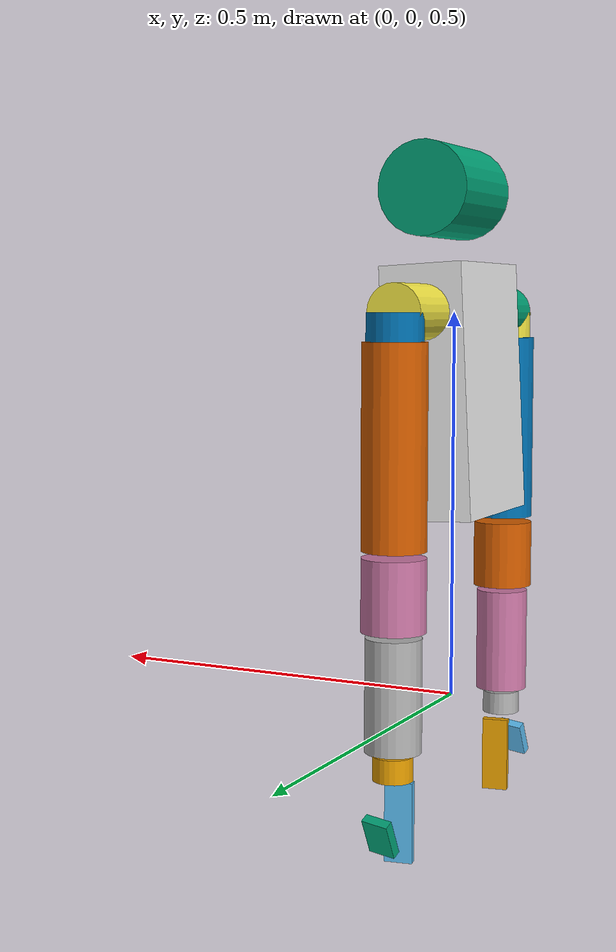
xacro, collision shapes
<?xml version="1.0"?>
<robot xmlns:xacro="http://www.ros.org/wiki/xacro" name="reachy_2023">
    <xacro:arg name="initial_positions_file" default="initial_positions.yaml" />

    <!-- Import reachy_2023 urdf file -->
    <xacro:arg name="use_fake_hardware" default="true" />
    <xacro:arg name="use_gazebo" default="true" />
    <xacro:arg name="use_moveit_gazebo" default="true" />

    <xacro:arg name="depth_camera" default="true" />

    <xacro:include filename="$(find reachy_description)/urdf/reachy.urdf.xacro" />

    <!-- No need as we use the reachy_description -->
    <!-- Import control_xacro -->

</robot>

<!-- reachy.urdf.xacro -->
<robot xmlns:xacro="http://www.ros.org/wiki/xacro" name="reachy_2023">

    <xacro:arg name="use_fake_hardware" default="false"/>
    <xacro:arg name="use_gazebo" default="false"/>

    <xacro:arg name="robot_config" default="full_kit"/>
    <xacro:arg name="orbita_hardware_zero" default="0.0, 0.0, 0.0"/>

    <xacro:include filename="$(find reachy_description)/urdf/arm.urdf.xacro"/>
    <xacro:include filename="$(find reachy_description)/urdf/head.urdf.xacro"/>
    <xacro:include filename="$(find reachy_description)/urdf/orbita.urdf.xacro"/>

    <link name="world"/>
    <joint name="world_joint" type="fixed">
        <origin xyz="0 0 1.0" rpy="0 0 0"/>
        <parent link="world"/>
        <child link="torso"/>
    </joint>

    <link name="torso">
        <inertial>
            <origin xyz="0.0 0.019 -0.009" rpy="0.0 0.0 0.0"/>
            <mass value="0.527"/>
            <inertia ixx="2.89598e-3" ixy="-1.16791e-6" ixz="-8.28749e-6" iyy="4.491e-3" iyz="2.343e-4" izz="3.995e-3"/>
        </inertial>
        <visual name="">
            <origin xyz="0.0 0.0 0.0" rpy="0.0 0.0 0.0"/>
            <geometry>
                <mesh filename="file://$(find reachy_description)/meshes/torso.dae"/>
            </geometry>
        </visual>
        <collision>
            <origin xyz="0 0 -0.1" rpy="0 0.05 0"/>
            <geometry>
                <box size="0.11 0.2 0.32"/>
            </geometry>
        </collision>
    </link>

    <gazebo reference="torso">
        <material>Gazebo/White</material>
        <static>true</static>
    </gazebo>

    <!--MODEL PARAMETERS-->
    <xacro:property name="damping" value="0.1"/>
    <xacro:property name="friction" value="0.1"/>
    <xacro:property name="robot_config" value="$(arg robot_config)"/>

    <xacro:if value="${robot_config == 'full_kit'}">
        <xacro:property name="use_right_arm" value="true"/>
        <xacro:property name="use_left_arm" value="true"/>
        <xacro:property name="use_head" value="true"/>
        <xacro:property name="use_orbita" value="false"/>
    </xacro:if>

    <xacro:if value="${robot_config == 'starter_kit_left'}">
        <xacro:property name="use_right_arm" value="false"/>
        <xacro:property name="use_left_arm" value="true"/>
        <xacro:property name="use_head" value="true"/>
        <xacro:property name="use_orbita" value="false"/>
    </xacro:if>

    <xacro:if value="${robot_config == 'starter_kit_right'}">
        <xacro:property name="use_right_arm" value="true"/>
        <xacro:property name="use_left_arm" value="false"/>
        <xacro:property name="use_head" value="true"/>
        <xacro:property name="use_orbita" value="false"/>
    </xacro:if>

    <xacro:if value="${robot_config == 'headless'}">
        <xacro:property name="use_right_arm" value="true"/>
        <xacro:property name="use_left_arm" value="true"/>
        <xacro:property name="use_head" value="false"/>
        <xacro:property name="use_orbita" value="false"/>
    </xacro:if>

    <xacro:if value="${robot_config == 'mini'}">
        <xacro:property name="use_right_arm" value="false"/>
        <xacro:property name="use_left_arm" value="false"/>
        <xacro:property name="use_head" value="true"/>
        <xacro:property name="use_orbita" value="false"/>
    </xacro:if>

    <xacro:if value="${robot_config == 'starter_kit_right_no_head'}">
        <xacro:property name="use_right_arm" value="true"/>
        <xacro:property name="use_left_arm" value="false"/>
        <xacro:property name="use_head" value="false"/>
        <xacro:property name="use_orbita" value="true"/>
    </xacro:if>

    <xacro:if value="${robot_config == 'left_arm'}">
        <xacro:property name="use_right_arm" value="false"/>
        <xacro:property name="use_left_arm" value="true"/>
        <xacro:property name="use_head" value="false"/>
        <xacro:property name="use_orbita" value="false"/>
    </xacro:if>

    <xacro:if value="${robot_config == 'right_arm'}">
        <xacro:property name="use_right_arm" value="true"/>
        <xacro:property name="use_left_arm" value="false"/>
        <xacro:property name="use_head" value="false"/>
        <xacro:property name="use_orbita" value="false"/>
    </xacro:if>

    <xacro:if value="${robot_config == 'orbita'}">
        <xacro:property name="use_right_arm" value="false"/>
        <xacro:property name="use_left_arm" value="false"/>
        <xacro:property name="use_head" value="false"/>
        <xacro:property name="use_orbita" value="true"/>
    </xacro:if>

    <xacro:if value="${use_right_arm}">
        <!-- RIGHT ARM-->
        <xacro:arm
                prefix="r" parent="torso" side="right"
                damping="${damping}" friction="${friction}"
                serial_port="/dev/usb2ax_right_arm"
                mx_ids="10, 11, 12, 13, 14, 15, 16, 17"
                offsets="1.57, 1.57, 0.0, 0.0, 0.0, 0.0, 0.0, 0.0"
                is_direct="0.0, 0.0, 0.0, 0.0, 0.0, 0.0, 0.0, 1.0"
                reductions="1.0, 1.0, 1.0, 1.0, 1.0, 1.0, 1.0, -2.0"
                force_sensor_id="40"
                fan_id="41"
        />
    </xacro:if>

    <xacro:if value="${use_left_arm}">
        <!-- LEFT ARM-->
        <xacro:arm
                prefix="l" parent="torso" side="left"
                damping="${damping}" friction="${friction}"
                serial_port="/dev/usb2ax_left_arm"
                mx_ids="20, 21, 22, 23, 24, 25, 26, 27"
                offsets="1.57, -1.57, 0.0, 0.0, 0.0, 0.0, 0.0, 0.0"
                is_direct="1.0, 0.0, 0.0, 0.0, 0.0, 0.0, 0.0, 1.0"
                reductions="1.0, 1.0, 1.0, 1.0, 1.0, 1.0, 1.0, -2.0"
                force_sensor_id="50"
                fan_id="51"
        />
    </xacro:if>

    <xacro:if value="${use_head}">
        <!-- HEAD-->
        <xacro:head
                parent="torso"
                damping="${damping}" friction="${friction}"

                neck_orbita_serial_port="/dev/orbita_neck"
                neck_orbita_id="70"
                neck_orbita_alpha="0.9424777960769379"
                neck_orbita_hardware_zero="$(arg orbita_hardware_zero)"
                neck_orbita_reduction="4.26666667"

                head_serial_port="/dev/usb2ax_head"
                head_xl320_ids="30, 31"
                head_xl320_offsets="0.0, 0.0"
                head_xl320_is_direct="1.0, 1.0"
                head_xl320_reductions="1.0, 1.0"
                head_fan_id="60"
        />
    </xacro:if>

    <xacro:if value="${use_orbita}">
        <!-- NO HEAD CASE - ONLY ORBITA IS REQUIRED -->
        <xacro:orbita
                parent="torso"
                damping="${damping}" friction="${friction}"

                neck_orbita_serial_port="/dev/orbita_neck"
                neck_orbita_id="70"
                neck_orbita_alpha="0.9424777960769379"
                neck_orbita_hardware_zero="$(arg orbita_hardware_zero)"
                neck_orbita_reduction="4.26666667"
        />
    </xacro:if>

    <xacro:if value="$(arg use_gazebo)">
        <gazebo>
            <plugin name="gazebo_ros2_control" filename="libgazebo_ros2_control.so">
                <parameters>$(find reachy_bringup)/config/reachy_${robot_config}_controllers.yaml</parameters>
                <robotNamespace>/reachy</robotNamespace>
            </plugin>
        </gazebo>
    </xacro:if>
</robot>

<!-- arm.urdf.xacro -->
<robot xmlns:xacro="http://www.ros.org/wiki/xacro">
    <xacro:macro name="arm"
                 params="prefix parent side damping friction serial_port mx_ids offsets is_direct reductions force_sensor_id fan_id">

        <xacro:include filename="$(find reachy_description)/ros2_control/arm.ros2_control.xacro"/>

        <xacro:if value="${side == 'left'}">
            <xacro:property name="reflect" value="-1"/>
            <xacro:property name="shoulder_y" value="0.044"/>
        </xacro:if>
        <xacro:if value="${side == 'right'}">
            <xacro:property name="reflect" value="1"/>
            <xacro:property name="shoulder_y" value="0.036"/>
        </xacro:if>

        <link name="${prefix}_shoulder">
            <inertial>
                <origin xyz="-0.016 ${shoulder_y} 0.0" rpy="${1.57*reflect} 1.57 0.0"/>
                <mass value="0.053"/>
                <inertia ixx="3.308e-4" ixy="9.972e-8" ixz="-2.037e-9" iyy="4.650e-5" iyz="2.113e-6" izz="3.545e-5"/>
            </inertial>
            <visual name="">
                <origin xyz="0.0 ${0.04*reflect} 0.0" rpy="${1.57*reflect} 1.57 0.0"/>
                <geometry>
                    <mesh filename="file://$(find reachy_description)/meshes/shoulder.dae"/>
                </geometry>
            </visual>
            <collision>
                <origin xyz="0.0 ${0.04*reflect} 0.0" rpy="${1.57*reflect} 1.57 0.0"/>
                <geometry>
                    <cylinder length="0.09" radius="0.035"/>
                </geometry>
            </collision>
        </link>

        <joint name="${prefix}_shoulder_pitch" type="revolute">
            <origin xyz="0.0 ${-0.19*reflect} 0.0" rpy="0.0 0.0 0.0"/>
            <parent link="${parent}"/>
            <child link="${prefix}_shoulder"/>
            <axis xyz="0 1 0"/>
            <limit lower="-2.618" upper="1.57" effort="10." velocity="0.0"/>
            <dynamics damping="${damping}" friction="${friction}"/>
        </joint>

        <link name="${prefix}_shoulder_x">
            <inertial>
                <origin xyz="-0.0 0.0 -0.019" rpy="0.0 0.0 0.0"/>
                <mass value="0.158"/>
                <inertia ixx="6.887e+4" ixy="5.393e+0" ixz="-9.155e+2" iyy="7.895e+4" iyz="4.512e-1" izz="4.235e+4"/>
            </inertial>
            <visual name="">
                <origin xyz="0.0 0.0 0.0" rpy="0.0 0.0 0.0"/>
                <geometry>
                    <mesh filename="file://$(find reachy_description)/meshes/shoulder_x.dae"/>
                </geometry>
            </visual>
            <collision>
                <origin xyz="0 0 -0.02" rpy="0.0 0.0 0.0"/>
                <geometry>
                    <cylinder length="0.04" radius="0.035"/>
                </geometry>
            </collision>
        </link>

        <joint name="${prefix}_shoulder_roll" type="revolute">
            <origin xyz="0 0 0" rpy="0.0 0.0 0.0"/>
            <parent link="${prefix}_shoulder"/>
            <child link="${prefix}_shoulder_x"/>
            <axis xyz="1 0 0"/>
            <xacro:if value="${side == 'right'}">
                <limit lower="-3.14" upper="0.174" effort="10." velocity="0.0"/>
            </xacro:if>
            <xacro:if value="${side == 'left'}">
                <limit lower="-0.174" upper="3.14" effort="10." velocity="0.0"/>
            </xacro:if>
            <dynamics damping="${damping}" friction="${friction}"/>
        </joint>

        <link name="${prefix}_upper_arm">
            <inertial>
                <origin xyz="-0.004 0.0 -0.1426" rpy="0.0 0.0 0.0"/>
                <mass value="0.430"/>
                <inertia ixx="3.264e-3" ixy="-4.027e-8" ixz="1.395e-4" iyy="3.345e-3" iyz="1.885e-6" izz="2.616e-4"/>
            </inertial>
            <visual name="">
                <origin xyz="0.0 0.0 -0.0526" rpy="0.0 0.0 0.0"/>
                <geometry>
                    <mesh filename="file://$(find reachy_description)/meshes/upper_arm.dae"/>
                </geometry>
            </visual>
            <collision>
                <origin xyz="0.0 0.0 -0.16" rpy="0.0 0.0 0.0"/>
                <geometry>
                    <cylinder length="0.25" radius="0.04"/>
                </geometry>
            </collision>
        </link>

        <joint name="${prefix}_arm_yaw" type="revolute">
            <origin xyz="0 0 0" rpy="0.0 0.0 0.0"/>
            <parent link="${prefix}_shoulder_x"/>
            <child link="${prefix}_upper_arm"/>
            <axis xyz="0 0 1"/>
            <limit lower="-1.57" upper="1.57" effort="10." velocity="0.0"/>
            <dynamics damping="${damping}" friction="${friction}"/>
        </joint>

        <link name="${prefix}_forearm">
            <inertial>
                <origin xyz="-0.008 0.0 -0.058" rpy="0.0 0.0 0.0"/>
                <mass value="0.162"/>
                <inertia ixx="2.532e-4" ixy="-2.999e-8" ixz="1.448e-5" iyy="2.538e-4" iyz="-4.323e-8" izz="1.234e-4"/>
            </inertial>
            <visual name="">
                <origin xyz="0.0 0.0 0.0" rpy="0.0 0.0 0.0"/>
                <geometry>
                    <mesh filename="file://$(find reachy_description)/meshes/forearm.dae"/>
                </geometry>
            </visual>
            <collision>
                <origin xyz="0.0 0.0 -0.058" rpy="0.0 0.0 0.0"/>
                <geometry>
                    <cylinder length="0.09" radius="0.04"/>
                </geometry>
            </collision>
        </link>

        <joint name="${prefix}_elbow_pitch" type="revolute">
            <origin xyz="0 0 -0.28" rpy="0.0 0.0 0.0"/>
            <parent link="${prefix}_upper_arm"/>
            <child link="${prefix}_forearm"/>
            <axis xyz="0 1 0"/>
            <limit lower="-2.182" upper="0" effort="10." velocity="0.0"/>
            <dynamics damping="${damping}" friction="${friction}"/>
        </joint>

        <link name="${prefix}_wrist">
            <inertial>
                <origin xyz="0.0 0.0 -0.193" rpy="0.0 0.0 0.0"/>
                <mass value="0.197"/>
                <inertia ixx="6.157e-4" ixy="5.706e-8" ixz="-1.045e-5" iyy="6.280e-4" iyz="4.862e-7" izz="1.050e-4"/>
            </inertial>
            <visual name="">
                <origin xyz="0.0 0.0 -0.100" rpy="0.0 0.0 0.0"/>
                <geometry>
                    <mesh filename="file://$(find reachy_description)/meshes/wrist.dae"/>
                </geometry>
            </visual>
            <collision>
                <origin xyz="0.0 0.0 -0.18" rpy="0.0 0.0 0.0"/>
                <geometry>
                    <cylinder length="0.14" radius="0.035"/>
                </geometry>
            </collision>
        </link>
        <gazebo reference="{prefix}_wrist">
            <self_collide>1</self_collide>
            <gravity>0</gravity>
            <mu1>10.0</mu1>
            <mu2>0.1</mu2>
            <kp>2e+9</kp>
            <kd>1.0</kd>
            <fdir1 value="1 0 0"/>
        </gazebo>

        <joint name="${prefix}_forearm_yaw" type="revolute">
            <origin xyz="0 0 0" rpy="0.0 0.0 0.0"/>
            <parent link="${prefix}_forearm"/>
            <child link="${prefix}_wrist"/>
            <axis xyz="0 0 1"/>
            <limit lower="-1.745" upper="1.745" effort="10." velocity="0.0"/>
            <dynamics damping="${damping}" friction="${friction}"/>
        </joint>

        <link name="${prefix}_wrist2hand">
            <inertial>
                <origin xyz="0.0 0.0 0.014" rpy="0.0 0.0 0.0"/>
                <mass value="0.01"/>
                <inertia ixx="6.750e-6" ixy="3.732e-11" ixz="-1.581e-11" iyy="6.060e-6" iyz="-1.746e-12"
                         izz="5.774e-6"/>
            </inertial>
            <visual name="">
                <origin xyz="0.0 0.0 0.0" rpy="0.0 0.0 0.0"/>
                <geometry>
                    <mesh filename="file://$(find reachy_description)/meshes/wrist2hand.dae"/>
                </geometry>
            </visual>
            <collision>
                <origin xyz="0.0 0.0 -0.02" rpy="0.0 0.0 0.0"/>
                <geometry>
                    <cylinder length="0.03" radius="0.025"/>
                </geometry>
            </collision>
        </link>
        <gazebo reference="${prefix}_wrist2hand">
            <self_collide>1</self_collide>
            <gravity>0</gravity>
            <mu1>10.0</mu1>
            <mu2>0.1</mu2>
            <kp>2e+9</kp>
            <kd>1.0</kd>
            <fdir1 value="1 0 0"/>
        </gazebo>

        <joint name="${prefix}_wrist_pitch" type="revolute">
            <origin xyz="0 0 -0.25" rpy="0.0 0.0 0.0"/>
            <parent link="${prefix}_wrist"/>
            <child link="${prefix}_wrist2hand"/>
            <axis xyz="0 1 0"/>
            <limit lower="-0.785" upper="0.785" effort="10." velocity="0.0"/>
            <dynamics damping="${damping}" friction="${friction}"/>
        </joint>
        <gazebo reference="{prefix}_wrist_pitch">
            <self_collide>1</self_collide>
            <gravity>0</gravity>
            <mu1>10.0</mu1>
            <mu2>0.1</mu2>
            <kp>2e+9</kp>
            <kd>1.0</kd>
            <fdir1 value="1 0 0"/>
        </gazebo>

        <link name="${prefix}_gripper_thumb">
            <inertial>
                <origin xyz="0.0 ${0.02 *reflect} -0.06" rpy="0.0 1.57 0.0"/>
                <mass value="0.173"/>
                <inertia ixx="1.083e-4" ixy="-3.476e-5" ixz="1.331e-6" iyy="1.421e-4" iyz="6.730e-7" izz="2.112e-4"/>
            </inertial>
            <visual name="">
                <origin xyz="0.0 0.0 0.0" rpy="0.0 1.57 0.0"/>
                <geometry>
                    <mesh filename="file://$(find reachy_description)/meshes/${prefix}_gripper_thumb.dae"/>
                </geometry>
            </visual>
            <collision>
                <origin xyz="0.0 ${0.02 *reflect} -0.06" rpy="-0.17 1.57 0.0"/>
                <geometry>
                    <box size="0.1 0.012 0.035"/>
                    <mesh filename="file://$(find reachy_description)/meshes/${prefix}_gripper_thumb.dae"/>
                </geometry>
            </collision>

        </link>

        <gazebo reference="${prefix}_gripper_thumb">
            <self_collide>1</self_collide>
            <gravity>0</gravity>
            <mu1>10.0</mu1>
            <mu2>0.1</mu2>
            <kp>2e+9</kp>
            <kd>1.0</kd>
            <fdir1 value="1 0 0"/>
            <max_vel>0.1</max_vel>
            <min_depth>0.001</min_depth>
        </gazebo>

        <joint name="${prefix}_wrist_roll" type="revolute">
            <origin xyz="0 0 -0.0325" rpy="0.0 0.0 0.0"/>
            <parent link="${prefix}_wrist2hand"/>
            <child link="${prefix}_gripper_thumb"/>
            <axis xyz="1 0 0"/>
            <xacro:if value="${side == 'right'}">
                <limit lower="-0.95" upper="0.61" effort="10." velocity="0.0"/>
            </xacro:if>
            <xacro:if value="${side == 'left'}">
                <limit lower="-0.61" upper="0.95" effort="10." velocity="0.0"/>
            </xacro:if>
            <dynamics damping="${damping}" friction="${friction}"/>
        </joint>
        <gazebo reference="${prefix}_wrist_roll">
            <self_collide>1</self_collide>
            <gravity>0</gravity>
            <mu1>10.0</mu1>
            <mu2>0.1</mu2>
            <kp>2e+9</kp>
            <kd>1.0</kd>
            <fdir1 value="1 0 0"/>
        </gazebo>

        <link name="${prefix}_gripper_finger">
            <inertial>
                <origin xyz="0.0 ${-0.01*reflect} -0.02" rpy="0.0 1.57 0.0"/>
                <mass value="0.035"/>
                <inertia ixx="1.062e-5" ixy="-6.559e-6" ixz="-3.952e-8" iyy="9.166e-5" iyz="5.276e-9" izz="8.704e-5"/>
            </inertial>
            <visual name="">
                <origin xyz="0.0 0.0 0.0" rpy="0.0 1.57 0.0"/>
                <geometry>
                    <mesh filename="file://$(find reachy_description)/meshes/${prefix}_gripper_finger.dae"/>
                </geometry>
            </visual>
            <collision>
                <origin xyz="0.0 ${-0.01*reflect} -0.02" rpy="0.17 1.57 0.0"/>
                <geometry>
                    <box size="0.05 0.012 0.035"/>
                    <mesh filename="file://$(find reachy_description)/meshes/${prefix}_gripper_finger.dae"/>
                </geometry>
            </collision>
        </link>

        <gazebo reference="${prefix}_gripper_finger">
            <self_collide>1</self_collide>
            <gravity>0</gravity>
            <mu1>10.0</mu1>
            <mu2>0.1</mu2>
            <kp>2e+9</kp>
            <kd>1.0</kd>
            <fdir1 value="1 0 0"/>
        </gazebo>

        <link name="${prefix}_arm_tip">
            <inertial>
                <origin xyz="0.0 0.0 0.0" rpy="0.0 0.0 0.0"/>
                <mass value="0.001"/>
                <inertia ixx="1.0e-6" ixy="1.0e-8" ixz="1.0e-8" iyy="1.0e-6" iyz="1.0e-8" izz="1.0e-6"/>
            </inertial>
        </link>

        <joint name="${prefix}_arm_tip" type="fixed">
            <origin xyz="0 -0.012 -0.085" rpy="0 0 0"/>
            <parent link="${prefix}_gripper_thumb"/>
            <child link="${prefix}_arm_tip"/>
        </joint>

        <joint name="${prefix}_gripper" type="revolute">
            <origin xyz="0.0 ${-0.037*reflect} -0.03998" rpy="-0.5 0.0 0.0"/>
            <parent link="${prefix}_gripper_thumb"/>
            <child link="${prefix}_gripper_finger"/>
            <axis xyz="1 0 0"/>

            <xacro:if value="${side == 'right'}">
                <limit lower="-1.2" upper="0.35" effort="10." velocity="0.0"/>
            </xacro:if>
            <xacro:if value="${side == 'left'}">
                <limit lower="-0.35" upper="1.2" effort="10." velocity="0.0"/>
            </xacro:if>

            <dynamics damping="${damping}" friction="${friction}"/>
        </joint>

        <xacro:if value="$(arg use_gazebo)">
            <gazebo reference="${prefix}_gripper">
                <provideFeedback>true</provideFeedback>
            </gazebo>
            <gazebo>
                <plugin name="gazebo_ros_ft" filename="libgazebo_ros_ft_sensor.so">

                    <ros>
                        <!-- Add namespace and remap the default topic -->
                        <namespace>/${prefix}_force_sensor</namespace>
                        <argument>wrench:=${prefix}_gripper_ft_sensor</argument>
                    </ros>

                    <joint_name>${prefix}_gripper</joint_name>
                    <update_rate>200</update_rate>
                    <update_rate>1</update_rate>
                    <gaussian_noise>0.01</gaussian_noise>
                </plugin>
            </gazebo>
        </xacro:if>

        <!-- Doesn't work... -->

        <xacro:arm_control
                name="${prefix}"
                serial_port="${serial_port}"
                mx_ids="${mx_ids}"
                offsets="${offsets}"
                is_direct="${is_direct}"
                reductions="${reductions}"
                force_sensor_id="${force_sensor_id}"
                fan_id="${fan_id}"
        />

    </xacro:macro>
</robot>

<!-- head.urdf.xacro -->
<robot xmlns:xacro="http://www.ros.org/wiki/xacro">

  <xacro:arg name="depth_camera" default="false"/>
  <xacro:property name="camera_link" value="0.05" /> <!-- Size of square 'camera' box -->
  <xacro:property name="camera_convergence" value="0.0" /> <!-- convergence angle (rad) of the cameras. 0=parallel-->

  <xacro:macro name="head" params="parent damping friction neck_orbita_serial_port neck_orbita_id neck_orbita_alpha neck_orbita_hardware_zero neck_orbita_reduction head_serial_port head_xl320_ids head_xl320_offsets head_xl320_is_direct head_xl320_reductions head_fan_id">

    <xacro:include filename="$(find reachy_description)/ros2_control/head.ros2_control.xacro"/>

    <joint name="neck_roll" type="revolute">
      <origin xyz="0.015 0.0 0.095" rpy="-0.15105105 0.08669986 -1.05356462"/>
      <parent link="${parent}"/>
      <child link="head_x"/>
      <axis xyz="1 0 0"/>
      <limit lower="-0.8" upper="0.8" effort="10." velocity="0.0"/>
      <dynamics damping="${damping}" friction="${friction}"/>
    </joint>

    <link name="head_x">
      <inertial>
        <origin xyz="0.0 0.0 0.0" rpy="0.0 0.0 0.0"/>
        <mass value="0.001"/>
        <inertia ixx="1.0e-6" ixy="1.0e-8" ixz="1.0e-8" iyy="1.0e-6" iyz="1.0e-8" izz="1.0e-6"/>
      </inertial>
    </link>

    <joint name="neck_pitch" type="revolute">
      <origin xyz="0 0 0" rpy="0.0 0.0 0.0"/>
      <parent link="head_x"/>
      <child link="head_y"/>
      <axis xyz="0 1 0"/>
      <limit lower="-0.8" upper="1.13" effort="10." velocity="0.0"/>
      <dynamics damping="${damping}" friction="${friction}"/>
    </joint>

    <link name="head_y" >
      <inertial>
        <origin xyz="0.0 0.0 0.0" rpy="0.0 0.0 0.0"/>
        <mass value="0.001"/>
        <inertia ixx="1.0e-6" ixy="1.0e-8" ixz="1.0e-8" iyy="1.0e-6" iyz="1.0e-8" izz="1.0e-6"/>
      </inertial>
    </link>

    <joint name="neck_yaw" type="revolute">
      <origin xyz="0 0 0" rpy="0.0 0.0 0.0"/>
      <parent link="head_y"/>
      <child link="head_z"/>
      <axis xyz="0 0 1"/>
      <limit lower="-2.79" upper="2.79" effort="10." velocity="0.0"/>
      <dynamics damping="${damping}" friction="${friction}"/>
    </joint>

    <link name="head_z">
      <inertial>
        <origin xyz="0.0 0.0 0.0" rpy="0.0 0.0 0.0"/>
        <mass value="0.001"/>
        <inertia ixx="1.0e-6" ixy="1.0e-8" ixz="1.0e-8" iyy="1.0e-6" iyz="1.0e-8" izz="1.0e-6"/>
      </inertial>
    </link>

    <joint name="neck_fixed" type="fixed">
      <origin xyz="0 0 0" rpy="0.0 0.0 1.047"/>
      <parent link="head_z" />
      <child link="head" />
    </joint>

    <!-- Fixed Orbita Arms Visuals -->

    <joint name="neck_top" type="fixed">
      <origin xyz="0.0067 0.0 0.0478" rpy="0 0.174 0"/>
      <parent link="${parent}"/>
      <child link="top_neck_arm"/>
    </joint>

    <link name="top_neck_arm">
      <inertial>
        <origin xyz="0.0 0.0 0.0" rpy="0.0 0.0 0.0"/>
        <mass value="0.001"/>
        <inertia ixx="1.0e-6" ixy="1.0e-8" ixz="1.0e-8" iyy="1.0e-6" iyz="1.0e-8" izz="1.0e-6"/>
      </inertial>

      <visual name="">
        <origin xyz="0.0 0.0 0.0" rpy="0.0 0.0 0.5236"/>
        <geometry>
          <mesh filename="package://reachy_description/meshes/orbita_arm.dae"/>
        </geometry>
      </visual>
      <collision>
        <origin xyz="0.0 0.0 0.0" rpy="0.0 0.0 0.0"/>
        <geometry>
          <cylinder length="0.0" radius="0.0" />
        </geometry>
      </collision>
    </link>

    <joint name="neck_middle" type="fixed">
      <origin xyz="0.0067 0.0 0.0478" rpy="0 0.174 0"/>
      <parent link="${parent}"/>
      <child link="middle_neck_arm"/>
    </joint>

    <link name="middle_neck_arm">
      <inertial>
        <origin xyz="0.0 0.0 0.0" rpy="0.0 0.0 0.0"/>
        <mass value="0.001"/>
        <inertia ixx="1.0e-6" ixy="1.0e-8" ixz="1.0e-8" iyy="1.0e-6" iyz="1.0e-8" izz="1.0e-6"/>
      </inertial>
      <visual name="">
        <origin xyz="0.0 0.0 0.0" rpy="0.0 0.0 2.618"/>
        <geometry>
          <mesh filename="package://reachy_description/meshes/orbita_arm.dae"/>
        </geometry>
      </visual>
      <collision>
        <origin xyz="0.0 0.0 0.0" rpy="0.0 0.0 0.0"/>
        <geometry>
          <cylinder length="0.0" radius="0.0" />
        </geometry>
      </collision>
    </link>

    <joint name="neck_bottom" type="fixed">
      <origin xyz="0.0067 0.0 0.0478" rpy="0 0.174 0"/>
      <parent link="${parent}"/>
      <child link="bottom_neck_arm"/>
    </joint>

    <link name="bottom_neck_arm">
      <inertial>
        <origin xyz="0.0 0.0 0.0" rpy="0.0 0.0 0.0"/>
        <mass value="0.001"/>
        <inertia ixx="1.0e-6" ixy="1.0e-8" ixz="1.0e-8" iyy="1.0e-6" iyz="1.0e-8" izz="1.0e-6"/>
      </inertial>
      <visual name="">
        <origin xyz="0.0 0.0 0.0" rpy="0.0 0.0 -1.57"/>
        <geometry>
          <mesh filename="package://reachy_description/meshes/orbita_arm.dae"/>
        </geometry>
      </visual>
      <collision>
        <origin xyz="0.0 0.0 0.0" rpy="0.0 0.0 0.0"/>
        <geometry>
          <cylinder length="0.0" radius="0.0" />
        </geometry>
      </collision>
    </link>

    <!-- Head Links -->

    <link name="head">
      <inertial>
        <origin xyz="-0.009 -0.002 0.059" rpy="0.0 0.0 0.0"/>
        <mass value="0.237"/>
        <inertia ixx="1.676e-3" ixy="3.068e-6" ixz="1.2449e-4" iyy="1.368e-3" iyz="3.360e-5" izz="8.425e-4"/>
      </inertial>
      <visual name="">
        <origin xyz="0.0 0.0 0.0" rpy="0.0 0.0 0.0"/>
        <geometry>
          <mesh filename="package://reachy_description/meshes/head.dae"/>
        </geometry>
      </visual>
      <collision>
        <origin xyz="-0.009 -0.002 0.059" rpy="1.57 0.0 0.0"/>
        <geometry>
          <cylinder length="0.15" radius="0.06" />
        </geometry>
      </collision>
    </link>

    <link name="head_tip" >
    </link>

    <joint name="head_tip_fixed" type="fixed">
      <!-- between the cameras -->
      <origin xyz="0.02 0 0.06105" rpy="0.0 0.0 0"/>

      <!-- Rotation center -->
      <parent link="head" />
      <child link="head_tip" />
    </joint>

    <link name="l_antenna_link">
      <inertial>
        <origin xyz="-0.001 0.0 0.008" rpy="0.0 0.0 0.0"/>
        <mass value="0.004"/>
        <inertia ixx="1.794e-7" ixy="-1.240e-5" ixz="1.91701e-8" iyy="1.5e-7" iyz="3.169e-6" izz="1.933e-7"/>
      </inertial>
      <visual name="">
        <origin xyz="0.0 0.0 0.0" rpy="0.0 0.0 0.0"/>
        <geometry>
          <mesh filename="package://reachy_description/meshes/antenna.dae"/>
        </geometry>
      </visual>
      <collision>
        <origin xyz="0.1 0.0 0.1" rpy="0.0 0 0.0"/>
        <geometry>
          <cylinder length="0.0" radius="0.0" />
        </geometry>
      </collision>
    </link>

    <joint name="l_antenna" type="revolute">
      <origin xyz="-0.052 0.057 0.086" rpy="0.166 -1.054 -1.11"/>
      <parent link="head"/>
      <child link="l_antenna_link"/>
      <axis xyz="0 0 1"/>
      <limit lower="-2.618" upper="2.618" effort="10." velocity="0.0"/>
    </joint>

    <link name="r_antenna_link">
      <inertial>
        <origin xyz="-0.001 0.0 0.008" rpy="0.0 0.0 0.0"/>
        <mass value="0.004"/>
        <inertia ixx="1.794e-7" ixy="-1.240e-5" ixz="1.91701e-8" iyy="1.5e-7" iyz="3.169e-6" izz="1.933e-7"/>
      </inertial>
      <visual name="">
        <origin xyz="0.0 0.0 0.0" rpy="0.0 0.0 0.0"/>
        <geometry>
          <mesh filename="package://reachy_description/meshes/antenna.dae"/>
        </geometry>
      </visual>
      <collision>
        <origin xyz="0.0 0.0 0.0" rpy="0.0 0.0 0.0"/>
        <geometry>
          <cylinder length="0.0" radius="0.0" />
        </geometry>
      </collision>
    </link>

    <joint name="r_antenna" type="revolute">
      <origin xyz="-0.052 -0.057 0.086" rpy="-0.166 -1.054 1.11"/>
      <parent link="head"/>
      <child link="r_antenna_link"/>
      <axis xyz="0 0 1"/>
      <limit lower="-2.618" upper="2.618" effort="10." velocity="0.0"/>
    </joint>

    <xacro:head_control
      neck_orbita_serial_port="${neck_orbita_serial_port}"
      neck_orbita_id="${neck_orbita_id}"
      neck_orbita_alpha="${neck_orbita_alpha}"
      neck_orbita_hardware_zero="${neck_orbita_hardware_zero}"
      neck_orbita_reduction="${neck_orbita_reduction}"

      head_serial_port="${head_serial_port}"
      head_xl320_ids="${head_xl320_ids}"
      head_xl320_offsets="${head_xl320_offsets}"
      head_xl320_is_direct="${head_xl320_is_direct}"
      head_xl320_reductions="${head_xl320_reductions}"
      head_fan_id="${head_fan_id}"
    />

    <!-- Cameras -->
    <xacro:if value="$(arg use_gazebo)">
      <joint name="left_cam_fixed" type="fixed">
	<origin xyz="0.02 0.03625 0.06105" rpy="0.0 0.0  ${-camera_convergence/2.0}"/>
	<parent link="head" />
	<child link="left_camera" />
      </joint>

      <link name="left_camera" >

	<inertial>
	  <mass value="1e-5" />
	  <origin xyz="0 0 0" rpy="0 0 0"/>
	  <inertia ixx="1e-6" ixy="0" ixz="0" iyy="1e-6" iyz="0" izz="1e-6" />
	</inertial>
      </link>

      <link name="left_camera_optical">
      </link>

      <joint name="left_camera_optical_joint" type="fixed">
	<!-- these values have to be these values otherwise the gazebo camera
             image won't be aligned properly with the frame it is supposedly
             originating from -->
	<origin xyz="0 0 0" rpy="${-pi/2.0} 0 ${-pi/2.0}"/>
	<parent link="left_camera"/>
	<child link="left_camera_optical"/>
      </joint>

      <joint name="right_cam_fixed" type="fixed">
	<origin xyz="0.02 -0.03625 0.06105" rpy="0.0 0.0 ${camera_convergence/2.0}"/>
	<parent link="head" />
	<child link="right_camera" />
      </joint>

      <link name="right_camera" >

	<inertial>
	  <mass value="1e-5" />
	  <origin xyz="0 0 0" rpy="0 0 0"/>
	  <inertia ixx="1e-6" ixy="0" ixz="0" iyy="1e-6" iyz="0" izz="1e-6" />
	</inertial>
      </link>

      <link name="right_camera_optical">
      </link>

      <joint name="right_camera_optical_joint" type="fixed">
	<!-- these values have to be these values otherwise the gazebo camera
             image won't be aligned properly with the frame it is supposedly
             originating from -->
	<origin xyz="0 0 0" rpy="${-pi/2.0} 0 ${-pi/2.0}"/>
	<parent link="right_camera"/>
	<child link="right_camera_optical"/>
      </joint>

      <gazebo reference="left_camera">
	<sensor type="camera" name="left_camera">

          <!-- Set always_on only sensor, not on plugin -->
          <always_on>0</always_on>

          <!-- Set update_rate only sensor, not on plugin -->
          <update_rate>30</update_rate>

          <camera name="left_camera">
            <horizontal_fov>1.3962634</horizontal_fov>
            <image>
              <width>800</width>
              <height>800</height>
              <format>R8G8B8</format>
            </image>
            <distortion>
              <k1>0.0</k1>
              <k2>0.0</k2>
              <k3>0.0</k3>
              <p1>0.0</p1>
              <p2>0.0</p2>
              <center>0.5 0.5</center>
            </distortion>

            <noise>
              <type>gaussian</type>
              <mean>0.0</mean>
              <stddev>0.007</stddev>
            </noise>

          </camera>

          <!-- Use camera, not camera_triggered -->
          <plugin name="left_camera_controller" filename="libgazebo_ros_camera.so">
              <ros>
                <namespace>/</namespace>
                <remapping>image_raw:=image_raw</remapping>
                <remapping>camera_info:=camera_info</remapping>
              </ros>
              <camera_name>left_image</camera_name>

            <!-- Set camera name. If empty, defaults to sensor name (i.e. "sensor_name") -->

            <!-- Set TF frame name. If empty, defaults to link name (i.e. "link_name") -->
            <frame_name>left_camera_optical</frame_name>

            <hack_baseline>0.07</hack_baseline>

            <!-- No need to repeat distortion parameters or to set autoDistortion -->
          </plugin>
        </sensor>
      </gazebo>

      <gazebo reference="right_camera">
	<sensor type="camera" name="right_camera">

          <!-- Set always_on only sensor, not on plugin -->
          <always_on>0</always_on>

          <!-- Set update_rate only sensor, not on plugin -->
          <update_rate>30</update_rate>

          <camera name="right_camera">
            <horizontal_fov>1.3962634</horizontal_fov>
            <image>
              <width>800</width>
              <height>800</height>
              <format>R8G8B8</format>
            </image>
            <distortion>
              <k1>0.0</k1>
              <k2>0.0</k2>
              <k3>0.0</k3>
              <p1>0.0</p1>
              <p2>0.0</p2>
              <center>0.5 0.5</center>
            </distortion>

            <noise>
              <type>gaussian</type>
              <mean>0.0</mean>
              <stddev>0.007</stddev>
            </noise>

          </camera>

          <!-- Use camera, not camera_triggered -->
          <plugin name="right_camera_controller" filename="libgazebo_ros_camera.so">
              <ros>
                <namespace>/</namespace>
                <remapping>image_raw:=image_raw</remapping>
                <remapping>camera_info:=camera_info</remapping>
              </ros>
              <camera_name>right_image</camera_name>

            <!-- Set camera name. If empty, defaults to sensor name (i.e. "sensor_name") -->

            <!-- Set TF frame name. If empty, defaults to link name (i.e. "link_name") -->
            <frame_name>right_camera_optical</frame_name>

            <hack_baseline>0.07</hack_baseline>

            <!-- No need to repeat distortion parameters or to set autoDistortion -->
          </plugin>
        </sensor>
      </gazebo>

      <link name="depth_camera_link" >

	<inertial>
	  <mass value="1e-5" />
	  <origin xyz="0 0 0" rpy="0 0 0"/>
	  <inertia ixx="1e-6" ixy="0" ixz="0" iyy="1e-6" iyz="0" izz="1e-6" />
	</inertial>

      </link>

      <joint name="depth_cam_fixed" type="fixed">
	<origin xyz="0.02 0 0.06105" rpy="0.0 0.0 0"/>
	<parent link="head" />
	<child link="depth_camera_link" />
      </joint>

      <link name="depth_camera_optical">
      </link>

      <joint name="depth_camera_optical_joint" type="fixed">
	<!-- these values have to be these values otherwise the gazebo camera
             image won't be aligned properly with the frame it is supposedly
             originating from -->
	<origin xyz="0 0 0" rpy="${-pi/2.0} 0 ${-pi/2.0}"/>
	<parent link="depth_camera_link"/>
	<child link="depth_camera_optical"/>
      </joint>

      <xacro:if value="$(arg depth_camera)">
	<gazebo reference="depth_camera_link">
	  <sensor name="depth_camera" type="depth">
            <always_on>true</always_on>
            <update_rate>15</update_rate>
            <pose>0 0 0 0 0 0</pose>
            <camera name="realsense_depth_camera">
              <horizontal_fov>1.46608</horizontal_fov>
              <image>
                <width>800</width>
                <height>800</height>
                <format>B8G8R8</format>
              </image>
              <clip>
                <near>0.05</near>
                <far>8</far>
              </clip>
            </camera>
            <!-- https://github.com/mlherd/ros2_turtlebot3_waffle_intel_realsense -->
            <plugin name="intel_realsense_r200_depth_driver" filename="libgazebo_ros_camera.so">
              <ros>
                <namespace>depth_camera</namespace>
                <remapping>depth_camera/image_raw:=color/image_raw</remapping>
                <remapping>depth_camera/depth/image_raw:=depth/image_rect_raw</remapping>
                <remapping>depth_camera/camera_info:=camera_info</remapping>
                <remapping>depth_camera/depth/camera_info:=depth/camera_info</remapping>
                <remapping>depth_camera/points:=depth/points</remapping>
              </ros>
              <camera_name>depth_camera</camera_name>
              <frame_name>depth_camera_optical</frame_name>
              <hack_baseline>0.07</hack_baseline>
              <min_depth>0.05</min_depth>
              <max_depth>8.0</max_depth>
            </plugin>
	  </sensor>
	</gazebo>
      </xacro:if>
</xacro:if>

</xacro:macro>
</robot>
